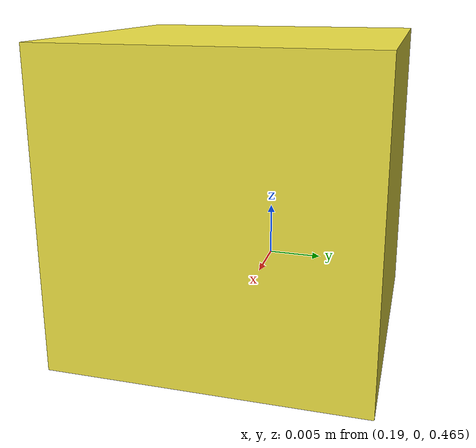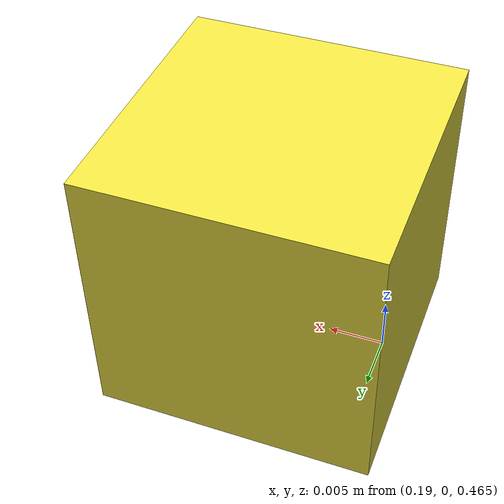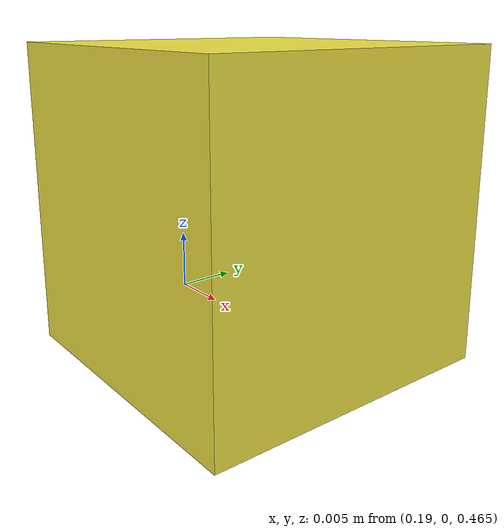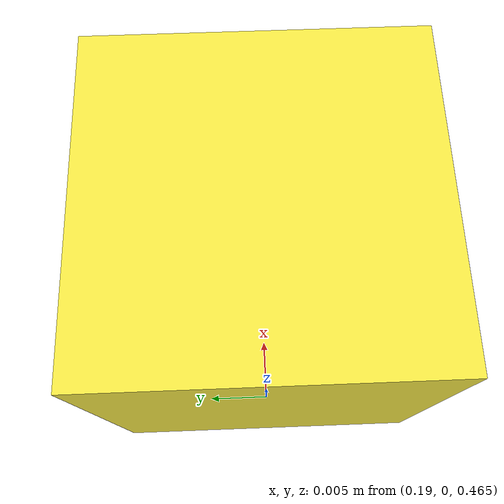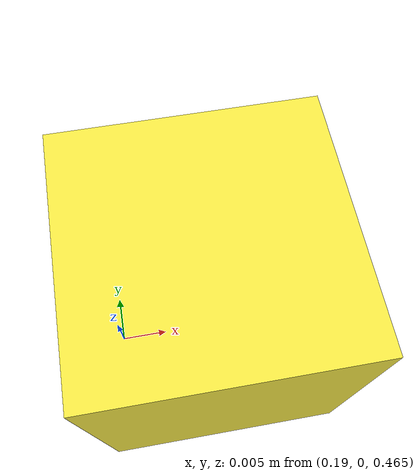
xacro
<?xml version="1.0" ?>
<robot name="sjtu_drone" xmlns:xacro="http://ros.org/wiki/xacro">
  <xacro:arg name="drone_id" default="drone0"/>
  <xacro:property name="drone_id" value="$(arg drone_id)"/>

  <!-- Sensors -->
  <!-- IMU sensor in 100fps -->

  	<xacro:include filename="robot_core_lr.xacro"/>
    <xacro:include filename="gazebo_control.xacro"/>
</robot>

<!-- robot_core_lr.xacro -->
<robot xmlns:xacro="http://www.ros.org/wiki/xacro">

    <xacro:include filename="inertial_macros.xacro"/>
	<link name="world">
		<origin xyz="0 0 0.0"/>
	</link>

	<gazebo reference="world">
		<static>true</static>
	</gazebo>
    <!-- AX1_LINK -->
    <joint name="${drone_id}/ax1_joint" type="revolute">
        <parent link="world"/>
        <child link="${drone_id}/ax1_link"/>
        <limit effort="10" velocity="1" upper="${pi*2}" lower="${-pi*2}"/>
        <axis xyz="0 0 1"/>
        <origin xyz="0 0 0.2"/>
        <dynamics damping="10.0" friction="10.0"/>
    </joint>

    <link name="${drone_id}/ax1_link">
        <xacro:inertial_box mass="0.05" x="0.1" y="0.1" z="0.1">
            <origin xyz="0 0 0.2" rpy="0 0 0"/>
        </xacro:inertial_box>
    </link>

    <gazebo reference="${drone_id}/ax1_link">
        <material>Gazebo/Red</material>
        <mu1 value="10"/>
        <mu2 value="10"/>
    </gazebo>

    <!-- AX2_LINK -->
    <joint name="${drone_id}/ax2_joint" type="revolute">
        <parent link="${drone_id}/ax1_link"/>
        <child link="${drone_id}/ax2_link"/>
        <limit effort="10" velocity="1" upper="${pi/2}" lower="${-pi/2}"/>
        <origin xyz="0 0 0.2"/>
        <axis xyz="1 0 0"/>
        <dynamics damping="10.0" friction="10.0"/>
    </joint>

    <link name="${drone_id}/ax2_link">
        <xacro:inertial_box mass="0.05" x="0.1" y="0.1" z="0.1">
            <origin xyz="0 0 0.2" rpy="0 0 0"/>
        </xacro:inertial_box>
    </link>

    <gazebo reference="${drone_id}/ax2_link">
        <material>Gazebo/Black</material>
        <mu1 value="10"/>
        <mu2 value="10"/>
    </gazebo>

    <!-- Camera Link -->
    <joint name="${drone_id}/camera_joint" type="fixed">
        <origin rpy="0 0 0" xyz="0.2 0 0.075"/>
        <parent link="${drone_id}/ax2_link"/>
        <child link="${drone_id}/camera_link"/>
    </joint>

    <link name="${drone_id}/camera_link">
        <visual>
            <origin xyz="0 0 0" rpy="0 0 0"/>
            <geometry>
                <box size="0.025 0.025 0.025"/>
            </geometry>
        </visual>
    </link>

<!-- controller -->
	<ros2_control name="GazeboSystem" type="system">

    	<hardware>
      		<plugin>gazebo_ros2_control/GazeboSystem</plugin>
    	</hardware>

		<joint name="${drone_id}/ax1_joint">
      		<command_interface name="position">
        		<param name="min">${-pi*2}</param>
        		<param name="max">${pi*2}</param>
      		</command_interface>
      		<state_interface name="position">
				<param name="initial_value">${pi/4}</param>
			</state_interface>
      		<state_interface name="velocity"/>
    	</joint>

    	<joint name="${drone_id}/ax2_joint">
      		<command_interface name="position">
        		<param name="min">${-pi/2}</param>
        		<param name="max">${pi/2}</param>
      		</command_interface>
      		<state_interface name="position">
				<param name="initial_value">${pi/4}</param>
			</state_interface>
      		<state_interface name="velocity"/>
    	</joint>

  	</ros2_control>

    <!-- Camera Sensor -->
    <gazebo reference="${drone_id}/camera_link">
        <sensor name="front_camera" type="camera">
            <camera>
                <horizontal_fov>2.09</horizontal_fov>
                <image>
                    <width>960</width>
                    <height>540</height>
                    <format>R8G8B8</format>
                </image>
                <clip>
                    <near>0.1</near>
                    <far>100</far>
                </clip>
                <noise>
                    <type>gaussian</type>
                    <mean>0.0</mean>
                    <stddev>0.005</stddev>
                </noise>
            </camera>
            <always_on>1</always_on>
            <update_rate>60</update_rate>
            <visualize>true</visualize>
            <plugin name="camera_front" filename="libgazebo_ros_camera.so">
                <ros>
                    <remapping>image_raw:=camera_front</remapping>
                    <remapping>camera_info:=camera_front_info</remapping>
                </ros>
                <camera_name>front</camera_name>
                <frame_name>front_cam_link</frame_name>
                <hack_baseline>0.07</hack_baseline>
            </plugin>
        </sensor>
    </gazebo>
</robot>
